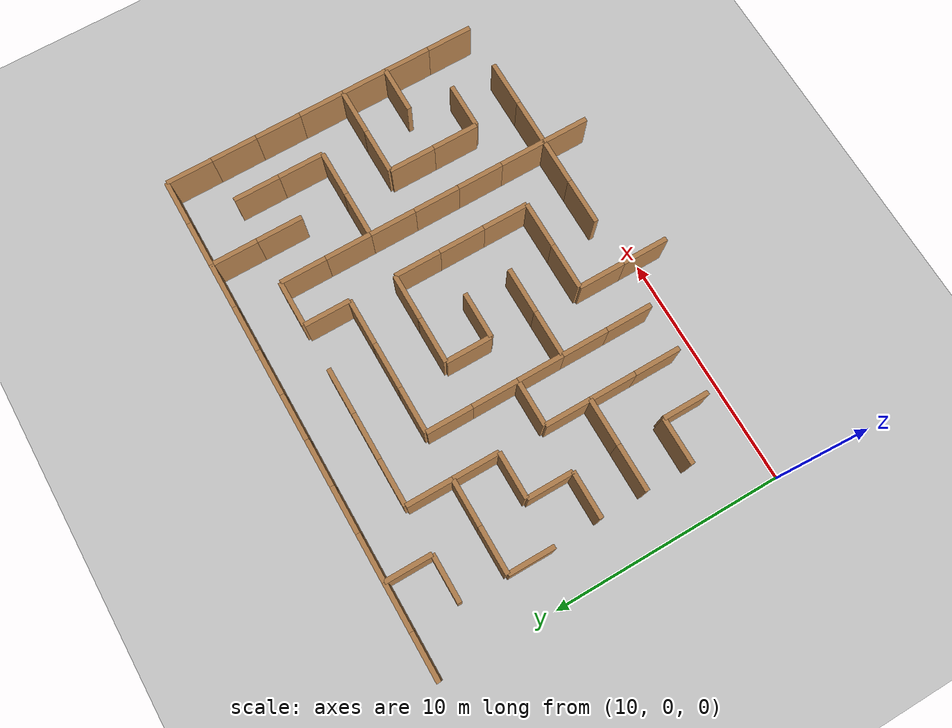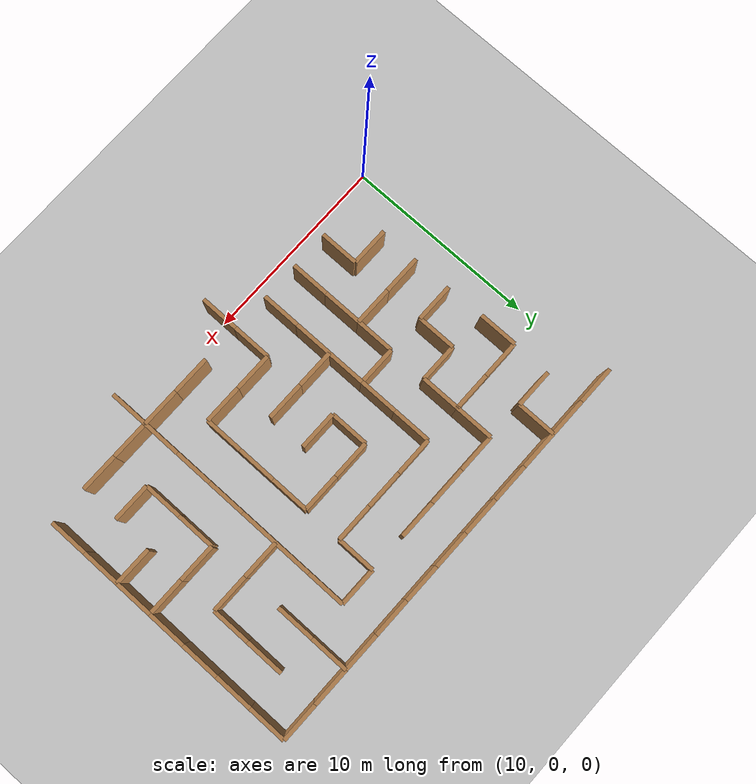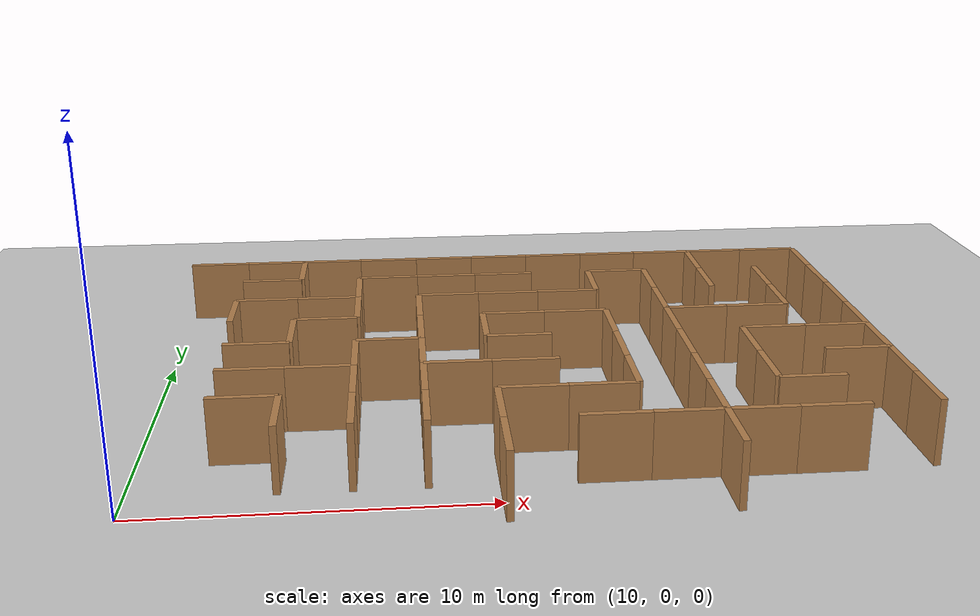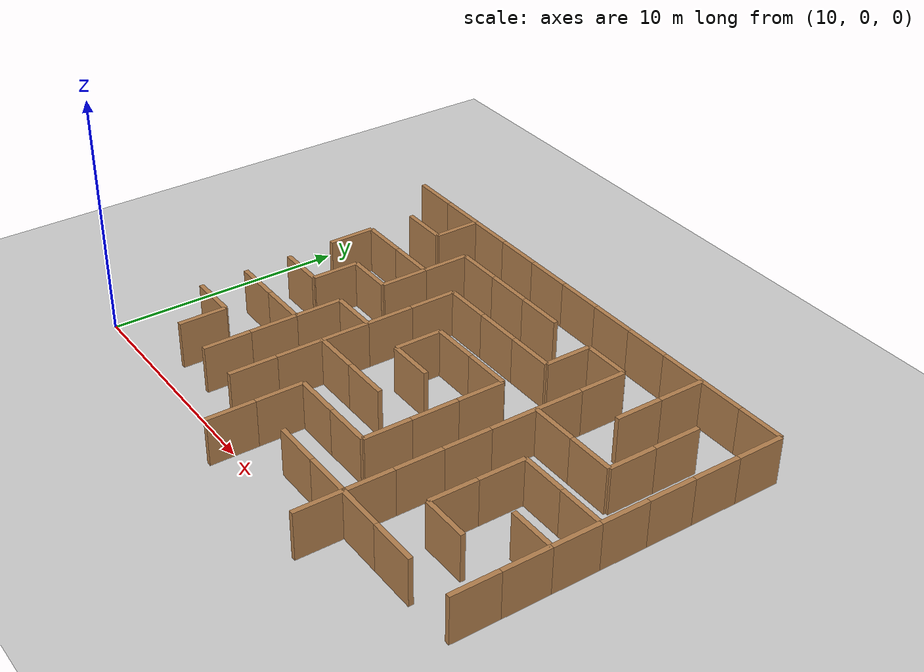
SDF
<sdf version="1.6">
 <world name="labyrinth_world">
  <include><uri>model://ground_plane</uri></include>
  <include><uri>model://sun</uri></include>
  <model name="h_wall_40">
   <static>true</static>
   <pose>12.0 10.0 1.0 0 0 0</pose>
   <link name="link">
    <collision name="c"><geometry><box><size>0.2 2.0 2.0</size></box></geometry></collision>
    <visual name="v">
     <geometry><box><size>0.2 2.0 2.0</size></box></geometry>
     <material>
      <script><uri>file://media/materials/scripts/gazebo.material</uri><name>Gazebo/Wood</name></script>
     </material>
    </visual>
   </link>
  </model>
  <model name="h_wall_46">
   <static>true</static>
   <pose>14.0 2.0 1.0 0 0 0</pose>
   <link name="link">
    <collision name="c"><geometry><box><size>0.2 2.0 2.0</size></box></geometry></collision>
    <visual name="v">
     <geometry><box><size>0.2 2.0 2.0</size></box></geometry>
     <material>
      <script><uri>file://media/materials/scripts/gazebo.material</uri><name>Gazebo/Wood</name></script>
     </material>
    </visual>
   </link>
  </model>
  <model name="h_wall_47">
   <static>true</static>
   <pose>14.0 8.0 1.0 0 0 0</pose>
   <link name="link">
    <collision name="c"><geometry><box><size>0.2 2.0 2.0</size></box></geometry></collision>
    <visual name="v">
     <geometry><box><size>0.2 2.0 2.0</size></box></geometry>
     <material>
      <script><uri>file://media/materials/scripts/gazebo.material</uri><name>Gazebo/WoodFloor</name></script>
     </material>
    </visual>
   </link>
  </model>
  <model name="h_wall_48">
   <static>true</static>
   <pose>14.0 14.0 1.0 0 0 0</pose>
   <link name="link">
    <collision name="c"><geometry><box><size>0.2 2.0 2.0</size></box></geometry></collision>
    <visual name="v">
     <geometry><box><size>0.2 2.0 2.0</size></box></geometry>
     <material>
      <script><uri>file://media/materials/scripts/gazebo.material</uri><name>Gazebo/Wood</name></script>
     </material>
    </visual>
   </link>
  </model>
  <model name="h_wall_54">
   <static>true</static>
   <pose>16.0 2.0 1.0 0 0 0</pose>
   <link name="link">
    <collision name="c"><geometry><box><size>0.2 2.0 2.0</size></box></geometry></collision>
    <visual name="v">
     <geometry><box><size>0.2 2.0 2.0</size></box></geometry>
     <material>
      <script><uri>file://media/materials/scripts/gazebo.material</uri><name>Gazebo/Wood</name></script>
     </material>
    </visual>
   </link>
  </model>
  <model name="h_wall_55">
   <static>true</static>
   <pose>16.0 4.0 1.0 0 0 0</pose>
   <link name="link">
    <collision name="c"><geometry><box><size>0.2 2.0 2.0</size></box></geometry></collision>
    <visual name="v">
     <geometry><box><size>0.2 2.0 2.0</size></box></geometry>
     <material>
      <script><uri>file://media/materials/scripts/gazebo.material</uri><name>Gazebo/WoodFloor</name></script>
     </material>
    </visual>
   </link>
  </model>
  <model name="h_wall_56">
   <static>true</static>
   <pose>16.0 6.0 1.0 0 0 0</pose>
   <link name="link">
    <collision name="c"><geometry><box><size>0.2 2.0 2.0</size></box></geometry></collision>
    <visual name="v">
     <geometry><box><size>0.2 2.0 2.0</size></box></geometry>
     <material>
      <script><uri>file://media/materials/scripts/gazebo.material</uri><name>Gazebo/Wood</name></script>
     </material>
    </visual>
   </link>
  </model>
  <model name="h_wall_57">
   <static>true</static>
   <pose>16.0 10.0 1.0 0 0 0</pose>
   <link name="link">
    <collision name="c"><geometry><box><size>0.2 2.0 2.0</size></box></geometry></collision>
    <visual name="v">
     <geometry><box><size>0.2 2.0 2.0</size></box></geometry>
     <material>
      <script><uri>file://media/materials/scripts/gazebo.material</uri><name>Gazebo/WoodFloor</name></script>
     </material>
    </visual>
   </link>
  </model>
  <model name="h_wall_58">
   <static>true</static>
   <pose>16.0 12.0 1.0 0 0 0</pose>
   <link name="link">
    <collision name="c"><geometry><box><size>0.2 2.0 2.0</size></box></geometry></collision>
    <visual name="v">
     <geometry><box><size>0.2 2.0 2.0</size></box></geometry>
     <material>
      <script><uri>file://media/materials/scripts/gazebo.material</uri><name>Gazebo/Wood</name></script>
     </material>
    </visual>
   </link>
  </model>
  <model name="h_wall_64">
   <static>true</static>
   <pose>18.0 2.0 1.0 0 0 0</pose>
   <link name="link">
    <collision name="c"><geometry><box><size>0.2 2.0 2.0</size></box></geometry></collision>
    <visual name="v">
     <geometry><box><size>0.2 2.0 2.0</size></box></geometry>
     <material>
      <script><uri>file://media/materials/scripts/gazebo.material</uri><name>Gazebo/Wood</name></script>
     </material>
    </visual>
   </link>
  </model>
  <model name="h_wall_65">
   <static>true</static>
   <pose>18.0 4.0 1.0 0 0 0</pose>
   <link name="link">
    <collision name="c"><geometry><box><size>0.2 2.0 2.0</size></box></geometry></collision>
    <visual name="v">
     <geometry><box><size>0.2 2.0 2.0</size></box></geometry>
     <material>
      <script><uri>file://media/materials/scripts/gazebo.material</uri><name>Gazebo/WoodFloor</name></script>
     </material>
    </visual>
   </link>
  </model>
  <model name="h_wall_66">
   <static>true</static>
   <pose>18.0 6.0 1.0 0 0 0</pose>
   <link name="link">
    <collision name="c"><geometry><box><size>0.2 2.0 2.0</size></box></geometry></collision>
    <visual name="v">
     <geometry><box><size>0.2 2.0 2.0</size></box></geometry>
     <material>
      <script><uri>file://media/materials/scripts/gazebo.material</uri><name>Gazebo/Wood</name></script>
     </material>
    </visual>
   </link>
  </model>
  <model name="h_wall_67">
   <static>true</static>
   <pose>18.0 8.0 1.0 0 0 0</pose>
   <link name="link">
    <collision name="c"><geometry><box><size>0.2 2.0 2.0</size></box></geometry></collision>
    <visual name="v">
     <geometry><box><size>0.2 2.0 2.0</size></box></geometry>
     <material>
      <script><uri>file://media/materials/scripts/gazebo.material</uri><name>Gazebo/WoodFloor</name></script>
     </material>
    </visual>
   </link>
  </model>
  <model name="h_wall_68">
   <static>true</static>
   <pose>18.0 10.0 1.0 0 0 0</pose>
   <link name="link">
    <collision name="c"><geometry><box><size>0.2 2.0 2.0</size></box></geometry></collision>
    <visual name="v">
     <geometry><box><size>0.2 2.0 2.0</size></box></geometry>
     <material>
      <script><uri>file://media/materials/scripts/gazebo.material</uri><name>Gazebo/Wood</name></script>
     </material>
    </visual>
   </link>
  </model>
  <model name="h_wall_72">
   <static>true</static>
   <pose>20.0 0.0 1.0 0 0 0</pose>
   <link name="link">
    <collision name="c"><geometry><box><size>0.2 2.0 2.0</size></box></geometry></collision>
    <visual name="v">
     <geometry><box><size>0.2 2.0 2.0</size></box></geometry>
     <material>
      <script><uri>file://media/materials/scripts/gazebo.material</uri><name>Gazebo/Wood</name></script>
     </material>
    </visual>
   </link>
  </model>
  <model name="h_wall_73">
   <static>true</static>
   <pose>20.0 2.0 1.0 0 0 0</pose>
   <link name="link">
    <collision name="c"><geometry><box><size>0.2 2.0 2.0</size></box></geometry></collision>
    <visual name="v">
     <geometry><box><size>0.2 2.0 2.0</size></box></geometry>
     <material>
      <script><uri>file://media/materials/scripts/gazebo.material</uri><name>Gazebo/WoodFloor</name></script>
     </material>
    </visual>
   </link>
  </model>
  <model name="h_wall_74">
   <static>true</static>
   <pose>20.0 8.0 1.0 0 0 0</pose>
   <link name="link">
    <collision name="c"><geometry><box><size>0.2 2.0 2.0</size></box></geometry></collision>
    <visual name="v">
     <geometry><box><size>0.2 2.0 2.0</size></box></geometry>
     <material>
      <script><uri>file://media/materials/scripts/gazebo.material</uri><name>Gazebo/Wood</name></script>
     </material>
    </visual>
   </link>
  </model>
  <model name="h_wall_81">
   <static>true</static>
   <pose>24.0 4.0 1.0 0 0 0</pose>
   <link name="link">
    <collision name="c"><geometry><box><size>0.2 2.0 2.0</size></box></geometry></collision>
    <visual name="v">
     <geometry><box><size>0.2 2.0 2.0</size></box></geometry>
     <material>
      <script><uri>file://media/materials/scripts/gazebo.material</uri><name>Gazebo/WoodFloor</name></script>
     </material>
    </visual>
   </link>
  </model>
  <model name="h_wall_82">
   <static>true</static>
   <pose>24.0 6.0 1.0 0 0 0</pose>
   <link name="link">
    <collision name="c"><geometry><box><size>0.2 2.0 2.0</size></box></geometry></collision>
    <visual name="v">
     <geometry><box><size>0.2 2.0 2.0</size></box></geometry>
     <material>
      <script><uri>file://media/materials/scripts/gazebo.material</uri><name>Gazebo/Wood</name></script>
     </material>
    </visual>
   </link>
  </model>
  <model name="h_wall_83">
   <static>true</static>
   <pose>24.0 8.0 1.0 0 0 0</pose>
   <link name="link">
    <collision name="c"><geometry><box><size>0.2 2.0 2.0</size></box></geometry></collision>
    <visual name="v">
     <geometry><box><size>0.2 2.0 2.0</size></box></geometry>
     <material>
      <script><uri>file://media/materials/scripts/gazebo.material</uri><name>Gazebo/WoodFloor</name></script>
     </material>
    </visual>
   </link>
  </model>
  <model name="h_wall_84">
   <static>true</static>
   <pose>24.0 12.0 1.0 0 0 0</pose>
   <link name="link">
    <collision name="c"><geometry><box><size>0.2 2.0 2.0</size></box></geometry></collision>
    <visual name="v">
     <geometry><box><size>0.2 2.0 2.0</size></box></geometry>
     <material>
      <script><uri>file://media/materials/scripts/gazebo.material</uri><name>Gazebo/Wood</name></script>
     </material>
    </visual>
   </link>
  </model>
  <model name="h_wall_88">
   <static>true</static>
   <pose>26.0 0.0 1.0 0 0 0</pose>
   <link name="link">
    <collision name="c"><geometry><box><size>0.2 2.0 2.0</size></box></geometry></collision>
    <visual name="v">
     <geometry><box><size>0.2 2.0 2.0</size></box></geometry>
     <material>
      <script><uri>file://media/materials/scripts/gazebo.material</uri><name>Gazebo/Wood</name></script>
     </material>
    </visual>
   </link>
  </model>
  <model name="h_wall_89">
   <static>true</static>
   <pose>26.0 2.0 1.0 0 0 0</pose>
   <link name="link">
    <collision name="c"><geometry><box><size>0.2 2.0 2.0</size></box></geometry></collision>
    <visual name="v">
     <geometry><box><size>0.2 2.0 2.0</size></box></geometry>
     <material>
      <script><uri>file://media/materials/scripts/gazebo.material</uri><name>Gazebo/WoodFloor</name></script>
     </material>
    </visual>
   </link>
  </model>
  <model name="h_wall_90">
   <static>true</static>
   <pose>26.0 4.0 1.0 0 0 0</pose>
   <link name="link">
    <collision name="c"><geometry><box><size>0.2 2.0 2.0</size></box></geometry></collision>
    <visual name="v">
     <geometry><box><size>0.2 2.0 2.0</size></box></geometry>
     <material>
      <script><uri>file://media/materials/scripts/gazebo.material</uri><name>Gazebo/Wood</name></script>
     </material>
    </visual>
   </link>
  </model>
  <model name="h_wall_91">
   <static>true</static>
   <pose>26.0 6.0 1.0 0 0 0</pose>
   <link name="link">
    <collision name="c"><geometry><box><size>0.2 2.0 2.0</size></box></geometry></collision>
    <visual name="v">
     <geometry><box><size>0.2 2.0 2.0</size></box></geometry>
     <material>
      <script><uri>file://media/materials/scripts/gazebo.material</uri><name>Gazebo/WoodFloor</name></script>
     </material>
    </visual>
   </link>
  </model>
  <model name="h_wall_92">
   <static>true</static>
   <pose>26.0 8.0 1.0 0 0 0</pose>
   <link name="link">
    <collision name="c"><geometry><box><size>0.2 2.0 2.0</size></box></geometry></collision>
    <visual name="v">
     <geometry><box><size>0.2 2.0 2.0</size></box></geometry>
     <material>
      <script><uri>file://media/materials/scripts/gazebo.material</uri><name>Gazebo/Wood</name></script>
     </material>
    </visual>
   </link>
  </model>
  <model name="h_wall_93">
   <static>true</static>
   <pose>26.0 10.0 1.0 0 0 0</pose>
   <link name="link">
    <collision name="c"><geometry><box><size>0.2 2.0 2.0</size></box></geometry></collision>
    <visual name="v">
     <geometry><box><size>0.2 2.0 2.0</size></box></geometry>
     <material>
      <script><uri>file://media/materials/scripts/gazebo.material</uri><name>Gazebo/WoodFloor</name></script>
     </material>
    </visual>
   </link>
  </model>
  <model name="h_wall_94">
   <static>true</static>
   <pose>26.0 12.0 1.0 0 0 0</pose>
   <link name="link">
    <collision name="c"><geometry><box><size>0.2 2.0 2.0</size></box></geometry></collision>
    <visual name="v">
     <geometry><box><size>0.2 2.0 2.0</size></box></geometry>
     <material>
      <script><uri>file://media/materials/scripts/gazebo.material</uri><name>Gazebo/Wood</name></script>
     </material>
    </visual>
   </link>
  </model>
  <model name="h_wall_98">
   <static>true</static>
   <pose>28.0 4.0 1.0 0 0 0</pose>
   <link name="link">
    <collision name="c"><geometry><box><size>0.2 2.0 2.0</size></box></geometry></collision>
    <visual name="v">
     <geometry><box><size>0.2 2.0 2.0</size></box></geometry>
     <material>
      <script><uri>file://media/materials/scripts/gazebo.material</uri><name>Gazebo/Wood</name></script>
     </material>
    </visual>
   </link>
  </model>
  <model name="h_wall_99">
   <static>true</static>
   <pose>28.0 6.0 1.0 0 0 0</pose>
   <link name="link">
    <collision name="c"><geometry><box><size>0.2 2.0 2.0</size></box></geometry></collision>
    <visual name="v">
     <geometry><box><size>0.2 2.0 2.0</size></box></geometry>
     <material>
      <script><uri>file://media/materials/scripts/gazebo.material</uri><name>Gazebo/WoodFloor</name></script>
     </material>
    </visual>
   </link>
  </model>
  <model name="h_wall_100">
   <static>true</static>
   <pose>28.0 12.0 1.0 0 0 0</pose>
   <link name="link">
    <collision name="c"><geometry><box><size>0.2 2.0 2.0</size></box></geometry></collision>
    <visual name="v">
     <geometry><box><size>0.2 2.0 2.0</size></box></geometry>
     <material>
      <script><uri>file://media/materials/scripts/gazebo.material</uri><name>Gazebo/Wood</name></script>
     </material>
    </visual>
   </link>
  </model>
  <model name="h_wall_101">
   <static>true</static>
   <pose>28.0 14.0 1.0 0 0 0</pose>
   <link name="link">
    <collision name="c"><geometry><box><size>0.2 2.0 2.0</size></box></geometry></collision>
    <visual name="v">
     <geometry><box><size>0.2 2.0 2.0</size></box></geometry>
     <material>
      <script><uri>file://media/materials/scripts/gazebo.material</uri><name>Gazebo/WoodFloor</name></script>
     </material>
    </visual>
   </link>
  </model>
  <model name="h_wall_103">
   <static>true</static>
   <pose>30.0 10.0 1.0 0 0 0</pose>
   <link name="link">
    <collision name="c"><geometry><box><size>0.2 2.0 2.0</size></box></geometry></collision>
    <visual name="v">
     <geometry><box><size>0.2 2.0 2.0</size></box></geometry>
     <material>
      <script><uri>file://media/materials/scripts/gazebo.material</uri><name>Gazebo/WoodFloor</name></script>
     </material>
    </visual>
   </link>
  </model>
  <model name="h_wall_104">
   <static>true</static>
   <pose>30.0 12.0 1.0 0 0 0</pose>
   <link name="link">
    <collision name="c"><geometry><box><size>0.2 2.0 2.0</size></box></geometry></collision>
    <visual name="v">
     <geometry><box><size>0.2 2.0 2.0</size></box></geometry>
     <material>
      <script><uri>file://media/materials/scripts/gazebo.material</uri><name>Gazebo/Wood</name></script>
     </material>
    </visual>
   </link>
  </model>
  <model name="h_wall_112">
   <static>true</static>
   <pose>32.0 2.0 1.0 0 0 0</pose>
   <link name="link">
    <collision name="c"><geometry><box><size>0.2 2.0 2.0</size></box></geometry></collision>
    <visual name="v">
     <geometry><box><size>0.2 2.0 2.0</size></box></geometry>
     <material>
      <script><uri>file://media/materials/scripts/gazebo.material</uri><name>Gazebo/Wood</name></script>
     </material>
    </visual>
   </link>
  </model>
  <model name="h_wall_113">
   <static>true</static>
   <pose>32.0 4.0 1.0 0 0 0</pose>
   <link name="link">
    <collision name="c"><geometry><box><size>0.2 2.0 2.0</size></box></geometry></collision>
    <visual name="v">
     <geometry><box><size>0.2 2.0 2.0</size></box></geometry>
     <material>
      <script><uri>file://media/materials/scripts/gazebo.material</uri><name>Gazebo/WoodFloor</name></script>
     </material>
    </visual>
   </link>
  </model>
  <model name="h_wall_114">
   <static>true</static>
   <pose>32.0 6.0 1.0 0 0 0</pose>
   <link name="link">
    <collision name="c"><geometry><box><size>0.2 2.0 2.0</size></box></geometry></collision>
    <visual name="v">
     <geometry><box><size>0.2 2.0 2.0</size></box></geometry>
     <material>
      <script><uri>file://media/materials/scripts/gazebo.material</uri><name>Gazebo/Wood</name></script>
     </material>
    </visual>
   </link>
  </model>
  <model name="h_wall_115">
   <static>true</static>
   <pose>32.0 8.0 1.0 0 0 0</pose>
   <link name="link">
    <collision name="c"><geometry><box><size>0.2 2.0 2.0</size></box></geometry></collision>
    <visual name="v">
     <geometry><box><size>0.2 2.0 2.0</size></box></geometry>
     <material>
      <script><uri>file://media/materials/scripts/gazebo.material</uri><name>Gazebo/WoodFloor</name></script>
     </material>
    </visual>
   </link>
  </model>
  <model name="h_wall_116">
   <static>true</static>
   <pose>32.0 10.0 1.0 0 0 0</pose>
   <link name="link">
    <collision name="c"><geometry><box><size>0.2 2.0 2.0</size></box></geometry></collision>
    <visual name="v">
     <geometry><box><size>0.2 2.0 2.0</size></box></geometry>
     <material>
      <script><uri>file://media/materials/scripts/gazebo.material</uri><name>Gazebo/Wood</name></script>
     </material>
    </visual>
   </link>
  </model>
  <model name="h_wall_117">
   <static>true</static>
   <pose>32.0 12.0 1.0 0 0 0</pose>
   <link name="link">
    <collision name="c"><geometry><box><size>0.2 2.0 2.0</size></box></geometry></collision>
    <visual name="v">
     <geometry><box><size>0.2 2.0 2.0</size></box></geometry>
     <material>
      <script><uri>file://media/materials/scripts/gazebo.material</uri><name>Gazebo/WoodFloor</name></script>
     </material>
    </visual>
   </link>
  </model>
  <model name="h_wall_118">
   <static>true</static>
   <pose>32.0 14.0 1.0 0 0 0</pose>
   <link name="link">
    <collision name="c"><geometry><box><size>0.2 2.0 2.0</size></box></geometry></collision>
    <visual name="v">
     <geometry><box><size>0.2 2.0 2.0</size></box></geometry>
     <material>
      <script><uri>file://media/materials/scripts/gazebo.material</uri><name>Gazebo/Wood</name></script>
     </material>
    </visual>
   </link>
  </model>
  <model name="v_wall_167">
   <static>true</static>
   <pose>11.0 15.0 1.0 0 0 0</pose>
   <link name="link">
    <collision name="c"><geometry><box><size>2.0 0.2 2.0</size></box></geometry></collision>
    <visual name="v">
     <geometry><box><size>2.0 0.2 2.0</size></box></geometry>
     <material>
      <script><uri>file://media/materials/scripts/gazebo.material</uri><name>Gazebo/WoodFloor</name></script>
     </material>
    </visual>
   </link>
  </model>
  <model name="v_wall_171">
   <static>true</static>
   <pose>13.0 3.0 1.0 0 0 0</pose>
   <link name="link">
    <collision name="c"><geometry><box><size>2.0 0.2 2.0</size></box></geometry></collision>
    <visual name="v">
     <geometry><box><size>2.0 0.2 2.0</size></box></geometry>
     <material>
      <script><uri>file://media/materials/scripts/gazebo.material</uri><name>Gazebo/WoodFloor</name></script>
     </material>
    </visual>
   </link>
  </model>
  <model name="v_wall_172">
   <static>true</static>
   <pose>13.0 5.0 1.0 0 0 0</pose>
   <link name="link">
    <collision name="c"><geometry><box><size>2.0 0.2 2.0</size></box></geometry></collision>
    <visual name="v">
     <geometry><box><size>2.0 0.2 2.0</size></box></geometry>
     <material>
      <script><uri>file://media/materials/scripts/gazebo.material</uri><name>Gazebo/Wood</name></script>
     </material>
    </visual>
   </link>
  </model>
  <model name="v_wall_173">
   <static>true</static>
   <pose>13.0 7.0 1.0 0 0 0</pose>
   <link name="link">
    <collision name="c"><geometry><box><size>2.0 0.2 2.0</size></box></geometry></collision>
    <visual name="v">
     <geometry><box><size>2.0 0.2 2.0</size></box></geometry>
     <material>
      <script><uri>file://media/materials/scripts/gazebo.material</uri><name>Gazebo/WoodFloor</name></script>
     </material>
    </visual>
   </link>
  </model>
  <model name="v_wall_174">
   <static>true</static>
   <pose>13.0 11.0 1.0 0 0 0</pose>
   <link name="link">
    <collision name="c"><geometry><box><size>2.0 0.2 2.0</size></box></geometry></collision>
    <visual name="v">
     <geometry><box><size>2.0 0.2 2.0</size></box></geometry>
     <material>
      <script><uri>file://media/materials/scripts/gazebo.material</uri><name>Gazebo/Wood</name></script>
     </material>
    </visual>
   </link>
  </model>
  <model name="v_wall_175">
   <static>true</static>
   <pose>13.0 13.0 1.0 0 0 0</pose>
   <link name="link">
    <collision name="c"><geometry><box><size>2.0 0.2 2.0</size></box></geometry></collision>
    <visual name="v">
     <geometry><box><size>2.0 0.2 2.0</size></box></geometry>
     <material>
      <script><uri>file://media/materials/scripts/gazebo.material</uri><name>Gazebo/WoodFloor</name></script>
     </material>
    </visual>
   </link>
  </model>
  <model name="v_wall_176">
   <static>true</static>
   <pose>13.0 15.0 1.0 0 0 0</pose>
   <link name="link">
    <collision name="c"><geometry><box><size>2.0 0.2 2.0</size></box></geometry></collision>
    <visual name="v">
     <geometry><box><size>2.0 0.2 2.0</size></box></geometry>
     <material>
      <script><uri>file://media/materials/scripts/gazebo.material</uri><name>Gazebo/Wood</name></script>
     </material>
    </visual>
   </link>
  </model>
  <model name="v_wall_180">
   <static>true</static>
   <pose>15.0 5.0 1.0 0 0 0</pose>
   <link name="link">
    <collision name="c"><geometry><box><size>2.0 0.2 2.0</size></box></geometry></collision>
    <visual name="v">
     <geometry><box><size>2.0 0.2 2.0</size></box></geometry>
     <material>
      <script><uri>file://media/materials/scripts/gazebo.material</uri><name>Gazebo/Wood</name></script>
     </material>
    </visual>
   </link>
  </model>
  <model name="v_wall_181">
   <static>true</static>
   <pose>15.0 9.0 1.0 0 0 0</pose>
   <link name="link">
    <collision name="c"><geometry><box><size>2.0 0.2 2.0</size></box></geometry></collision>
    <visual name="v">
     <geometry><box><size>2.0 0.2 2.0</size></box></geometry>
     <material>
      <script><uri>file://media/materials/scripts/gazebo.material</uri><name>Gazebo/WoodFloor</name></script>
     </material>
    </visual>
   </link>
  </model>
  <model name="v_wall_182">
   <static>true</static>
   <pose>15.0 11.0 1.0 0 0 0</pose>
   <link name="link">
    <collision name="c"><geometry><box><size>2.0 0.2 2.0</size></box></geometry></collision>
    <visual name="v">
     <geometry><box><size>2.0 0.2 2.0</size></box></geometry>
     <material>
      <script><uri>file://media/materials/scripts/gazebo.material</uri><name>Gazebo/Wood</name></script>
     </material>
    </visual>
   </link>
  </model>
  <model name="v_wall_183">
   <static>true</static>
   <pose>15.0 15.0 1.0 0 0 0</pose>
   <link name="link">
    <collision name="c"><geometry><box><size>2.0 0.2 2.0</size></box></geometry></collision>
    <visual name="v">
     <geometry><box><size>2.0 0.2 2.0</size></box></geometry>
     <material>
      <script><uri>file://media/materials/scripts/gazebo.material</uri><name>Gazebo/WoodFloor</name></script>
     </material>
    </visual>
   </link>
  </model>
  <model name="v_wall_188">
   <static>true</static>
   <pose>17.0 7.0 1.0 0 0 0</pose>
   <link name="link">
    <collision name="c"><geometry><box><size>2.0 0.2 2.0</size></box></geometry></collision>
    <visual name="v">
     <geometry><box><size>2.0 0.2 2.0</size></box></geometry>
     <material>
      <script><uri>file://media/materials/scripts/gazebo.material</uri><name>Gazebo/Wood</name></script>
     </material>
    </visual>
   </link>
  </model>
  <model name="v_wall_189">
   <static>true</static>
   <pose>17.0 13.0 1.0 0 0 0</pose>
   <link name="link">
    <collision name="c"><geometry><box><size>2.0 0.2 2.0</size></box></geometry></collision>
    <visual name="v">
     <geometry><box><size>2.0 0.2 2.0</size></box></geometry>
     <material>
      <script><uri>file://media/materials/scripts/gazebo.material</uri><name>Gazebo/WoodFloor</name></script>
     </material>
    </visual>
   </link>
  </model>
  <model name="v_wall_190">
   <static>true</static>
   <pose>17.0 15.0 1.0 0 0 0</pose>
   <link name="link">
    <collision name="c"><geometry><box><size>2.0 0.2 2.0</size></box></geometry></collision>
    <visual name="v">
     <geometry><box><size>2.0 0.2 2.0</size></box></geometry>
     <material>
      <script><uri>file://media/materials/scripts/gazebo.material</uri><name>Gazebo/Wood</name></script>
     </material>
    </visual>
   </link>
  </model>
  <model name="v_wall_195">
   <static>true</static>
   <pose>19.0 5.0 1.0 0 0 0</pose>
   <link name="link">
    <collision name="c"><geometry><box><size>2.0 0.2 2.0</size></box></geometry></collision>
    <visual name="v">
     <geometry><box><size>2.0 0.2 2.0</size></box></geometry>
     <material>
      <script><uri>file://media/materials/scripts/gazebo.material</uri><name>Gazebo/WoodFloor</name></script>
     </material>
    </visual>
   </link>
  </model>
  <model name="v_wall_196">
   <static>true</static>
   <pose>19.0 11.0 1.0 0 0 0</pose>
   <link name="link">
    <collision name="c"><geometry><box><size>2.0 0.2 2.0</size></box></geometry></collision>
    <visual name="v">
     <geometry><box><size>2.0 0.2 2.0</size></box></geometry>
     <material>
      <script><uri>file://media/materials/scripts/gazebo.material</uri><name>Gazebo/Wood</name></script>
     </material>
    </visual>
   </link>
  </model>
  <model name="v_wall_197">
   <static>true</static>
   <pose>19.0 13.0 1.0 0 0 0</pose>
   <link name="link">
    <collision name="c"><geometry><box><size>2.0 0.2 2.0</size></box></geometry></collision>
    <visual name="v">
     <geometry><box><size>2.0 0.2 2.0</size></box></geometry>
     <material>
      <script><uri>file://media/materials/scripts/gazebo.material</uri><name>Gazebo/WoodFloor</name></script>
     </material>
    </visual>
   </link>
  </model>
  <model name="v_wall_198">
   <static>true</static>
   <pose>19.0 15.0 1.0 0 0 0</pose>
   <link name="link">
    <collision name="c"><geometry><box><size>2.0 0.2 2.0</size></box></geometry></collision>
    <visual name="v">
     <geometry><box><size>2.0 0.2 2.0</size></box></geometry>
     <material>
      <script><uri>file://media/materials/scripts/gazebo.material</uri><name>Gazebo/Wood</name></script>
     </material>
    </visual>
   </link>
  </model>
  <model name="v_wall_204">
   <static>true</static>
   <pose>21.0 3.0 1.0 0 0 0</pose>
   <link name="link">
    <collision name="c"><geometry><box><size>2.0 0.2 2.0</size></box></geometry></collision>
    <visual name="v">
     <geometry><box><size>2.0 0.2 2.0</size></box></geometry>
     <material>
      <script><uri>file://media/materials/scripts/gazebo.material</uri><name>Gazebo/Wood</name></script>
     </material>
    </visual>
   </link>
  </model>
  <model name="v_wall_205">
   <static>true</static>
   <pose>21.0 5.0 1.0 0 0 0</pose>
   <link name="link">
    <collision name="c"><geometry><box><size>2.0 0.2 2.0</size></box></geometry></collision>
    <visual name="v">
     <geometry><box><size>2.0 0.2 2.0</size></box></geometry>
     <material>
      <script><uri>file://media/materials/scripts/gazebo.material</uri><name>Gazebo/WoodFloor</name></script>
     </material>
    </visual>
   </link>
  </model>
  <model name="v_wall_206">
   <static>true</static>
   <pose>21.0 7.0 1.0 0 0 0</pose>
   <link name="link">
    <collision name="c"><geometry><box><size>2.0 0.2 2.0</size></box></geometry></collision>
    <visual name="v">
     <geometry><box><size>2.0 0.2 2.0</size></box></geometry>
     <material>
      <script><uri>file://media/materials/scripts/gazebo.material</uri><name>Gazebo/Wood</name></script>
     </material>
    </visual>
   </link>
  </model>
  <model name="v_wall_207">
   <static>true</static>
   <pose>21.0 9.0 1.0 0 0 0</pose>
   <link name="link">
    <collision name="c"><geometry><box><size>2.0 0.2 2.0</size></box></geometry></collision>
    <visual name="v">
     <geometry><box><size>2.0 0.2 2.0</size></box></geometry>
     <material>
      <script><uri>file://media/materials/scripts/gazebo.material</uri><name>Gazebo/WoodFloor</name></script>
     </material>
    </visual>
   </link>
  </model>
  <model name="v_wall_208">
   <static>true</static>
   <pose>21.0 11.0 1.0 0 0 0</pose>
   <link name="link">
    <collision name="c"><geometry><box><size>2.0 0.2 2.0</size></box></geometry></collision>
    <visual name="v">
     <geometry><box><size>2.0 0.2 2.0</size></box></geometry>
     <material>
      <script><uri>file://media/materials/scripts/gazebo.material</uri><name>Gazebo/Wood</name></script>
     </material>
    </visual>
   </link>
  </model>
  <model name="v_wall_209">
   <static>true</static>
   <pose>21.0 13.0 1.0 0 0 0</pose>
   <link name="link">
    <collision name="c"><geometry><box><size>2.0 0.2 2.0</size></box></geometry></collision>
    <visual name="v">
     <geometry><box><size>2.0 0.2 2.0</size></box></geometry>
     <material>
      <script><uri>file://media/materials/scripts/gazebo.material</uri><name>Gazebo/WoodFloor</name></script>
     </material>
    </visual>
   </link>
  </model>
  <model name="v_wall_210">
   <static>true</static>
   <pose>21.0 15.0 1.0 0 0 0</pose>
   <link name="link">
    <collision name="c"><geometry><box><size>2.0 0.2 2.0</size></box></geometry></collision>
    <visual name="v">
     <geometry><box><size>2.0 0.2 2.0</size></box></geometry>
     <material>
      <script><uri>file://media/materials/scripts/gazebo.material</uri><name>Gazebo/Wood</name></script>
     </material>
    </visual>
   </link>
  </model>
  <model name="v_wall_216">
   <static>true</static>
   <pose>23.0 1.0 1.0 0 0 0</pose>
   <link name="link">
    <collision name="c"><geometry><box><size>2.0 0.2 2.0</size></box></geometry></collision>
    <visual name="v">
     <geometry><box><size>2.0 0.2 2.0</size></box></geometry>
     <material>
      <script><uri>file://media/materials/scripts/gazebo.material</uri><name>Gazebo/Wood</name></script>
     </material>
    </visual>
   </link>
  </model>
  <model name="v_wall_217">
   <static>true</static>
   <pose>23.0 3.0 1.0 0 0 0</pose>
   <link name="link">
    <collision name="c"><geometry><box><size>2.0 0.2 2.0</size></box></geometry></collision>
    <visual name="v">
     <geometry><box><size>2.0 0.2 2.0</size></box></geometry>
     <material>
      <script><uri>file://media/materials/scripts/gazebo.material</uri><name>Gazebo/WoodFloor</name></script>
     </material>
    </visual>
   </link>
  </model>
  <model name="v_wall_218">
   <static>true</static>
   <pose>23.0 9.0 1.0 0 0 0</pose>
   <link name="link">
    <collision name="c"><geometry><box><size>2.0 0.2 2.0</size></box></geometry></collision>
    <visual name="v">
     <geometry><box><size>2.0 0.2 2.0</size></box></geometry>
     <material>
      <script><uri>file://media/materials/scripts/gazebo.material</uri><name>Gazebo/Wood</name></script>
     </material>
    </visual>
   </link>
  </model>
  <model name="v_wall_219">
   <static>true</static>
   <pose>23.0 11.0 1.0 0 0 0</pose>
   <link name="link">
    <collision name="c"><geometry><box><size>2.0 0.2 2.0</size></box></geometry></collision>
    <visual name="v">
     <geometry><box><size>2.0 0.2 2.0</size></box></geometry>
     <material>
      <script><uri>file://media/materials/scripts/gazebo.material</uri><name>Gazebo/WoodFloor</name></script>
     </material>
    </visual>
   </link>
  </model>
  <model name="v_wall_220">
   <static>true</static>
   <pose>23.0 15.0 1.0 0 0 0</pose>
   <link name="link">
    <collision name="c"><geometry><box><size>2.0 0.2 2.0</size></box></geometry></collision>
    <visual name="v">
     <geometry><box><size>2.0 0.2 2.0</size></box></geometry>
     <material>
      <script><uri>file://media/materials/scripts/gazebo.material</uri><name>Gazebo/Wood</name></script>
     </material>
    </visual>
   </link>
  </model>
  <model name="v_wall_226">
   <static>true</static>
   <pose>25.0 1.0 1.0 0 0 0</pose>
   <link name="link">
    <collision name="c"><geometry><box><size>2.0 0.2 2.0</size></box></geometry></collision>
    <visual name="v">
     <geometry><box><size>2.0 0.2 2.0</size></box></geometry>
     <material>
      <script><uri>file://media/materials/scripts/gazebo.material</uri><name>Gazebo/Wood</name></script>
     </material>
    </visual>
   </link>
  </model>
  <model name="v_wall_227">
   <static>true</static>
   <pose>25.0 13.0 1.0 0 0 0</pose>
   <link name="link">
    <collision name="c"><geometry><box><size>2.0 0.2 2.0</size></box></geometry></collision>
    <visual name="v">
     <geometry><box><size>2.0 0.2 2.0</size></box></geometry>
     <material>
      <script><uri>file://media/materials/scripts/gazebo.material</uri><name>Gazebo/WoodFloor</name></script>
     </material>
    </visual>
   </link>
  </model>
  <model name="v_wall_228">
   <static>true</static>
   <pose>25.0 15.0 1.0 0 0 0</pose>
   <link name="link">
    <collision name="c"><geometry><box><size>2.0 0.2 2.0</size></box></geometry></collision>
    <visual name="v">
     <geometry><box><size>2.0 0.2 2.0</size></box></geometry>
     <material>
      <script><uri>file://media/materials/scripts/gazebo.material</uri><name>Gazebo/Wood</name></script>
     </material>
    </visual>
   </link>
  </model>
  <model name="v_wall_233">
   <static>true</static>
   <pose>27.0 1.0 1.0 0 0 0</pose>
   <link name="link">
    <collision name="c"><geometry><box><size>2.0 0.2 2.0</size></box></geometry></collision>
    <visual name="v">
     <geometry><box><size>2.0 0.2 2.0</size></box></geometry>
     <material>
      <script><uri>file://media/materials/scripts/gazebo.material</uri><name>Gazebo/WoodFloor</name></script>
     </material>
    </visual>
   </link>
  </model>
  <model name="v_wall_234">
   <static>true</static>
   <pose>27.0 9.0 1.0 0 0 0</pose>
   <link name="link">
    <collision name="c"><geometry><box><size>2.0 0.2 2.0</size></box></geometry></collision>
    <visual name="v">
     <geometry><box><size>2.0 0.2 2.0</size></box></geometry>
     <material>
      <script><uri>file://media/materials/scripts/gazebo.material</uri><name>Gazebo/Wood</name></script>
     </material>
    </visual>
   </link>
  </model>
  <model name="v_wall_235">
   <static>true</static>
   <pose>27.0 15.0 1.0 0 0 0</pose>
   <link name="link">
    <collision name="c"><geometry><box><size>2.0 0.2 2.0</size></box></geometry></collision>
    <visual name="v">
     <geometry><box><size>2.0 0.2 2.0</size></box></geometry>
     <material>
      <script><uri>file://media/materials/scripts/gazebo.material</uri><name>Gazebo/WoodFloor</name></script>
     </material>
    </visual>
   </link>
  </model>
  <model name="v_wall_242">
   <static>true</static>
   <pose>29.0 1.0 1.0 0 0 0</pose>
   <link name="link">
    <collision name="c"><geometry><box><size>2.0 0.2 2.0</size></box></geometry></collision>
    <visual name="v">
     <geometry><box><size>2.0 0.2 2.0</size></box></geometry>
     <material>
      <script><uri>file://media/materials/scripts/gazebo.material</uri><name>Gazebo/Wood</name></script>
     </material>
    </visual>
   </link>
  </model>
  <model name="v_wall_243">
   <static>true</static>
   <pose>29.0 3.0 1.0 0 0 0</pose>
   <link name="link">
    <collision name="c"><geometry><box><size>2.0 0.2 2.0</size></box></geometry></collision>
    <visual name="v">
     <geometry><box><size>2.0 0.2 2.0</size></box></geometry>
     <material>
      <script><uri>file://media/materials/scripts/gazebo.material</uri><name>Gazebo/WoodFloor</name></script>
     </material>
    </visual>
   </link>
  </model>
  <model name="v_wall_244">
   <static>true</static>
   <pose>29.0 7.0 1.0 0 0 0</pose>
   <link name="link">
    <collision name="c"><geometry><box><size>2.0 0.2 2.0</size></box></geometry></collision>
    <visual name="v">
     <geometry><box><size>2.0 0.2 2.0</size></box></geometry>
     <material>
      <script><uri>file://media/materials/scripts/gazebo.material</uri><name>Gazebo/Wood</name></script>
     </material>
    </visual>
   </link>
  </model>
  <model name="v_wall_245">
   <static>true</static>
   <pose>29.0 9.0 1.0 0 0 0</pose>
   <link name="link">
    <collision name="c"><geometry><box><size>2.0 0.2 2.0</size></box></geometry></collision>
    <visual name="v">
     <geometry><box><size>2.0 0.2 2.0</size></box></geometry>
     <material>
      <script><uri>file://media/materials/scripts/gazebo.material</uri><name>Gazebo/WoodFloor</name></script>
     </material>
    </visual>
   </link>
  </model>
  <model name="v_wall_246">
   <static>true</static>
   <pose>29.0 15.0 1.0 0 0 0</pose>
   <link name="link">
    <collision name="c"><geometry><box><size>2.0 0.2 2.0</size></box></geometry></collision>
    <visual name="v">
     <geometry><box><size>2.0 0.2 2.0</size></box></geometry>
     <material>
      <script><uri>file://media/materials/scripts/gazebo.material</uri><name>Gazebo/Wood</name></script>
     </material>
    </visual>
   </link>
  </model>
  <model name="v_wall_251">
   <static>true</static>
   <pose>31.0 5.0 1.0 0 0 0</pose>
   <link name="link">
    <collision name="c"><geometry><box><size>2.0 0.2 2.0</size></box></geometry></collision>
    <visual name="v">
     <geometry><box><size>2.0 0.2 2.0</size></box></geometry>
     <material>
      <script><uri>file://media/materials/scripts/gazebo.material</uri><name>Gazebo/WoodFloor</name></script>
     </material>
    </visual>
   </link>
  </model>
  <model name="v_wall_252">
   <static>true</static>
   <pose>31.0 7.0 1.0 0 0 0</pose>
   <link name="link">
    <collision name="c"><geometry><box><size>2.0 0.2 2.0</size></box></geometry></collision>
    <visual name="v">
     <geometry><box><size>2.0 0.2 2.0</size></box></geometry>
     <material>
      <script><uri>file://media/materials/scripts/gazebo.material</uri><name>Gazebo/Wood</name></script>
     </material>
    </visual>
   </link>
  </model>
  <model name="v_wall_253">
   <static>true</static>
   <pose>31.0 15.0 1.0 0 0 0</pose>
   <link name="link">
    <collision name="c"><geometry><box><size>2.0 0.2 2.0</size></box></geometry></collision>
    <visual name="v">
     <geometry><box><size>2.0 0.2 2.0</size></box></geometry>
     <material>
      <script><uri>file://media/materials/scripts/gazebo.material</uri><name>Gazebo/WoodFloor</name></script>
     </material>
    </visual>
   </link>
  </model>
 </world>
</sdf>
